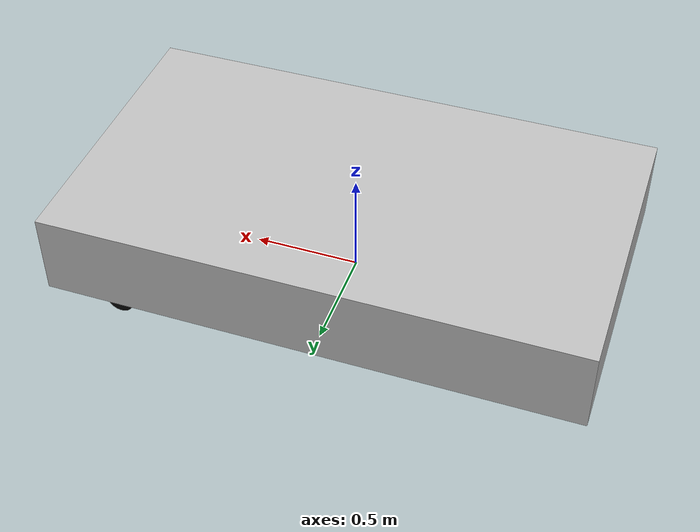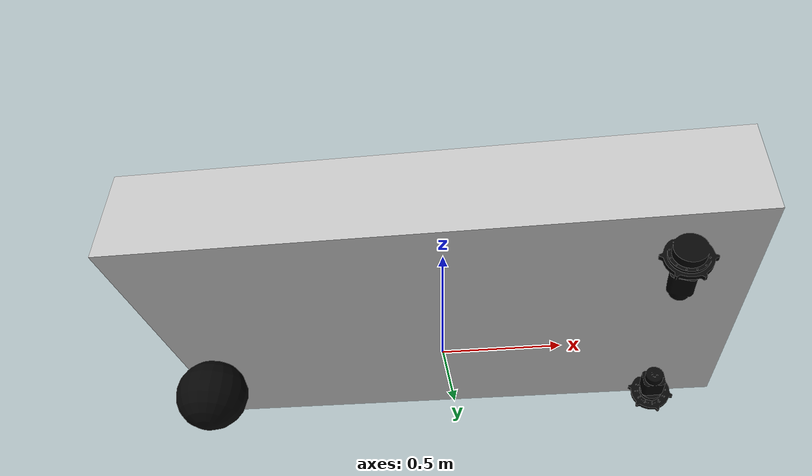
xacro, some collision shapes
<?xml version="1.0"?>
<robot name="agri_robot" xmlns:xacro="http://www.ros.org/wiki/xacro">
  <xacro:arg name="use_meshes" default="true"/>

  <xacro:property name="mesh_path" value="package://trunk_gazebo_worlds/models/bb_robot/meshes"/>
  <xacro:property name="base_length" value="2.50"/>
  <xacro:property name="base_width" value="1.40"/>
  <xacro:property name="base_height" value="0.40"/>
  <xacro:property name="track_radius" value="0.20"/>
  <xacro:property name="track_width" value="0.20"/>

  <material name="body_silver">
    <color rgba="0.75 0.75 0.75 1.0"/>
  </material>
  <material name="track_black">
    <color rgba="0.02 0.02 0.02 1.0"/>
  </material>
  <material name="sensor_white">
    <color rgba="1.0 1.0 1.0 1.0"/>
  </material>

  <link name="base_link">
    <visual>
      <origin xyz="0 0 0" rpy="0 0 0"/>
      <geometry>
        <xacro:if value="$(arg use_meshes)">
          <mesh filename="${mesh_path}/body.STL"/>
        </xacro:if>
        <xacro:unless value="$(arg use_meshes)">
          <box size="${base_length} ${base_width} ${base_height}"/>
        </xacro:unless>
      </geometry>
      <material name="body_silver"/>
    </visual>
    <collision>
      <origin xyz="0 0 0.30" rpy="0 0 0"/>
      <geometry>
        <box size="${base_length} ${base_width} ${base_height}"/>
      </geometry>
    </collision>
  </link>

  <link name="left_track">
    <inertial>
      <origin xyz="0 0 0" rpy="0 0 0"/>
      <mass value="5.0"/>
      <inertia ixx="0.1" ixy="0.0" ixz="0.0" iyy="0.1" iyz="0.0" izz="0.1"/>
    </inertial>
    <visual>
      <origin xyz="0 0 0" rpy="0 0 0"/>
      <geometry>
        <xacro:if value="$(arg use_meshes)">
          <mesh filename="${mesh_path}/wheel2_body.STL"/>
        </xacro:if>
        <xacro:unless value="$(arg use_meshes)">
          <cylinder radius="${track_radius}" length="${track_width}"/>
        </xacro:unless>
      </geometry>
      <material name="track_black"/>
    </visual>
    <collision>
      <origin xyz="0 0 0" rpy="1.57079632679 0 0"/>
      <geometry>
        <cylinder radius="${track_radius}" length="${track_width}"/>
      </geometry>
    </collision>
  </link>

  <joint name="left_motor_joint" type="continuous">
    <origin xyz="0.942 0.61468 0.023" rpy="0 0 0"/>
    <parent link="base_link"/>
    <child link="left_track"/>
    <axis xyz="0 1 0"/>
  </joint>

  <link name="right_track">
    <inertial>
      <origin xyz="0 0 0" rpy="0 0 0"/>
      <mass value="5.0"/>
      <inertia ixx="0.1" ixy="0.0" ixz="0.0" iyy="0.1" iyz="0.0" izz="0.1"/>
    </inertial>
    <visual>
      <origin xyz="0 0 0" rpy="0 0 0"/>
      <geometry>
        <xacro:if value="$(arg use_meshes)">
          <mesh filename="${mesh_path}/wheel1_body.STL"/>
        </xacro:if>
        <xacro:unless value="$(arg use_meshes)">
          <cylinder radius="${track_radius}" length="${track_width}"/>
        </xacro:unless>
      </geometry>
      <material name="track_black"/>
    </visual>
    <collision>
      <origin xyz="0 0 0" rpy="1.57079632679 0 0"/>
      <geometry>
        <cylinder radius="${track_radius}" length="${track_width}"/>
      </geometry>
    </collision>
  </link>

  <joint name="right_motor_joint" type="continuous">
    <origin xyz="0.942 -0.61448 0.023" rpy="0 0 0"/>
    <parent link="base_link"/>
    <child link="right_track"/>
    <axis xyz="0 1 0"/>
  </joint>

  <link name="caster_wheel">
    <inertial>
      <origin xyz="0 0 0" rpy="0 0 0"/>
      <mass value="1.0"/>
      <inertia ixx="0.01" ixy="0.0" ixz="0.0" iyy="0.01" iyz="0.0" izz="0.01"/>
    </inertial>
    <visual>
      <geometry>
        <sphere radius="0.15"/>
      </geometry>
      <material name="track_black"/>
    </visual>
    <collision>
      <geometry>
        <sphere radius="0.15"/>
      </geometry>
    </collision>
  </link>

  <joint name="caster_joint" type="fixed">
    <origin xyz="-1.0 0 -0.15" rpy="0 0 0"/>
    <parent link="base_link"/>
    <child link="caster_wheel"/>
  </joint>

  <link name="camera_link">
    <inertial>
      <origin xyz="-0.015 0 0" rpy="0 0 0"/>
      <mass value="0.09"/>
      <inertia ixx="0.00008175" ixy="0.0" ixz="0.0" iyy="0.0000135" iyz="0.0" izz="0.00008175"/>
    </inertial>
    <visual>
      <origin xyz="0 0 0" rpy="0 0 0"/>
      <geometry>
        <xacro:if value="$(arg use_meshes)">
          <mesh filename="${mesh_path}/camera_body.STL"/>
        </xacro:if>
        <xacro:unless value="$(arg use_meshes)">
          <box size="0.08 0.08 0.05"/>
        </xacro:unless>
      </geometry>
      <material name="sensor_white"/>
    </visual>
    <collision>
      <origin xyz="0 0 0" rpy="0 0 0"/>
      <geometry>
        <box size="0.08 0.08 0.05"/>
      </geometry>
    </collision>
  </link>

  <joint name="camera_joint" type="fixed">
    <origin xyz="1.1775 0.00027 0.383" rpy="0 0 0"/>
    <parent link="base_link"/>
    <child link="camera_link"/>
  </joint>

  <link name="camera_optical_frame"/>
  <joint name="camera_optical_joint" type="fixed">
    <origin xyz="0 0 0" rpy="-1.57079632679 0 -1.57079632679"/>
    <parent link="camera_link"/>
    <child link="camera_optical_frame"/>
  </joint>

  <link name="imu_link">
    <inertial>
      <origin xyz="0 0 0" rpy="0 0 0"/>
      <mass value="0.02"/>
      <inertia ixx="0.00001" ixy="0.0" ixz="0.0" iyy="0.00001" iyz="0.0" izz="0.00001"/>
    </inertial>
    <visual>
      <geometry>
        <box size="0.06 0.04 0.02"/>
      </geometry>
      <material name="sensor_white"/>
    </visual>
    <collision>
      <geometry>
        <box size="0.06 0.04 0.02"/>
      </geometry>
    </collision>
  </link>

  <joint name="imu_joint" type="fixed">
    <origin xyz="0 0 0.45" rpy="0 0 0"/>
    <parent link="base_link"/>
    <child link="imu_link"/>
  </joint>
</robot>
